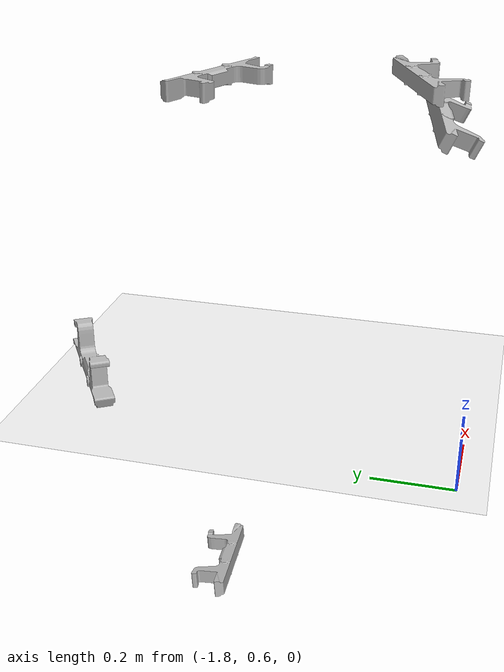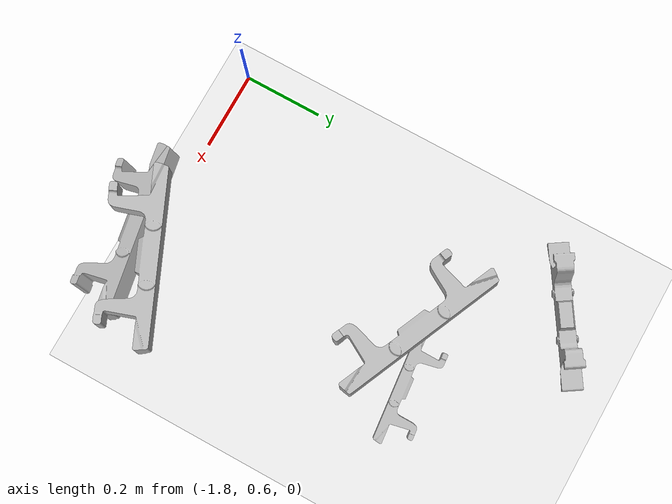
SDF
<sdf version="1.6">
 <world name="default">
  <light name="sun" type="directional">
   <pose>0 0 10 0 -0 0</pose>
   <diffuse>0.8 0.8 0.8 1</diffuse>
   <specular>0.1 0.1 0.1 1</specular>
   <attenuation>
    <range>1000</range>
    <constant>0.9</constant>
    <linear>0.01</linear>
    <quadratic>0.001</quadratic>
   </attenuation>
   <direction>-0.5 0.5 -1</direction>
  </light>
  <model name="ground_plane">
   <static>1</static>
   <link name="link">
    <collision name="collision">
     <geometry><plane><normal>0 0 1</normal><size>100 100</size></plane></geometry>
     <surface><friction><ode><mu>100</mu><mu2>50</mu2></ode></friction></surface>
    </collision>
    <visual name="visual">
     <cast_shadows>0</cast_shadows>
     <geometry><plane><normal>0 0 1</normal><size>100 100</size></plane></geometry>
     <material>
      <script><uri>file://media/materials/scripts/gazebo.material</uri><name>Gazebo/Grey</name></script>
     </material>
    </visual>
   </link>
  </model>
  <gravity>0 0 -9.8</gravity>
  <magnetic_field>6e-06 2.3e-05 -4.2e-05</magnetic_field>
  <atmosphere type="adiabatic"/>
  <physics name="default_physics" default="0" type="ode">
   <max_step_size>0.001</max_step_size>
   <real_time_factor>1</real_time_factor>
   <real_time_update_rate>1000</real_time_update_rate>
  </physics>
  <scene><ambient>0.4 0.4 0.4 1</ambient><background>0.7 0.7 0.7 1</background><shadows>1</shadows></scene>
  <spherical_coordinates>
   <surface_model>EARTH_WGS84</surface_model>
   <latitude_deg>0</latitude_deg>
   <longitude_deg>0</longitude_deg>
   <elevation>0</elevation>
   <heading_deg>0</heading_deg>
  </spherical_coordinates>
  <model name="grelha">
   <link name="base">
    <pose>0 0 0.029335 0 -0 0</pose>
    <inertial>
     <pose>0.000765 -0.005776 0.025771 0 -0 0</pose>
     <mass>5</mass>
     <inertia><ixx>0.01</ixx><iyy>0.06</iyy><izz>0.07</izz><ixy>0</ixy><ixz>0</ixz><iyz>0</iyz></inertia>
    </inertial>
    <collision name="base_collision">
     <geometry><mesh><uri>model://grelha/meshes/grelha.stl</uri><scale>1 1 1</scale></mesh></geometry>
    </collision>
    <visual name="base_visual">
     <geometry><mesh><uri>model://grelha/meshes/grelha.stl</uri><scale>1 1 1</scale></mesh></geometry>
    </visual>
   </link>
   <pose>-1.03026 1.24737 -0.030097 0.003566 -1.2e-05 -0.416286</pose>
  </model>
  <model name="grelha_0">
   <link name="base">
    <pose>0 0 0.029335 0 -0 0</pose>
    <inertial>
     <pose>0.000765 -0.005776 0.025771 0 -0 0</pose>
     <mass>5</mass>
     <inertia><ixx>0.01</ixx><iyy>0.06</iyy><izz>0.07</izz><ixy>0</ixy><ixz>0</ixz><iyz>0</iyz></inertia>
    </inertial>
    <collision name="base_collision">
     <geometry><mesh><uri>model://grelha/meshes/grelha.stl</uri><scale>1 1 1</scale></mesh></geometry>
    </collision>
    <visual name="base_visual">
     <geometry><mesh><uri>model://grelha/meshes/grelha.stl</uri><scale>1 1 1</scale></mesh></geometry>
    </visual>
   </link>
   <pose>-0.957994 1.19186 0.017154 0.407114 -0.111885 0.210008</pose>
  </model>
  <model name="grelha_1">
   <link name="base">
    <pose>0 0 0.029335 0 -0 0</pose>
    <inertial>
     <pose>0.000765 -0.005776 0.025771 0 -0 0</pose>
     <mass>5</mass>
     <inertia><ixx>0.01</ixx><iyy>0.06</iyy><izz>0.07</izz><ixy>0</ixy><ixz>0</ixz><iyz>0</iyz></inertia>
    </inertial>
    <collision name="base_collision">
     <geometry><mesh><uri>model://grelha/meshes/grelha.stl</uri><scale>1 1 1</scale></mesh></geometry>
    </collision>
    <visual name="base_visual">
     <geometry><mesh><uri>model://grelha/meshes/grelha.stl</uri><scale>1 1 1</scale></mesh></geometry>
    </visual>
   </link>
   <pose>-0.980387 1.34183 0.104191 3.0491 0.143865 0.097338</pose>
  </model>
  <model name="grelha_2">
   <link name="base">
    <pose>0 0 0.029335 0 -0 0</pose>
    <inertial>
     <pose>0.000765 -0.005776 0.025771 0 -0 0</pose>
     <mass>5</mass>
     <inertia><ixx>0.01</ixx><iyy>0.06</iyy><izz>0.07</izz><ixy>0</ixy><ixz>0</ixz><iyz>0</iyz></inertia>
    </inertial>
    <collision name="base_collision">
     <geometry><mesh><uri>model://grelha/meshes/grelha.stl</uri><scale>1 1 1</scale></mesh></geometry>
    </collision>
    <visual name="base_visual">
     <geometry><mesh><uri>model://grelha/meshes/grelha.stl</uri><scale>1 1 1</scale></mesh></geometry>
    </visual>
   </link>
   <pose>-0.961164 0.992761 -0.03007 0.011747 -0 0.422838</pose>
  </model>
  <model name="grelha_3">
   <link name="base">
    <pose>0 0 0.029335 0 -0 0</pose>
    <inertial>
     <pose>0.000765 -0.005776 0.025771 0 -0 0</pose>
     <mass>5</mass>
     <inertia><ixx>0.01</ixx><iyy>0.06</iyy><izz>0.07</izz><ixy>0</ixy><ixz>0</ixz><iyz>0</iyz></inertia>
    </inertial>
    <collision name="base_collision">
     <geometry><mesh><uri>model://grelha/meshes/grelha.stl</uri><scale>1 1 1</scale></mesh></geometry>
    </collision>
    <visual name="base_visual">
     <geometry><mesh><uri>model://grelha/meshes/grelha.stl</uri><scale>1 1 1</scale></mesh></geometry>
    </visual>
   </link>
   <pose>-0.933404 1.03185 0.025893 -1.55614 -0.000435 0.572932</pose>
  </model>
 </world>
</sdf>
